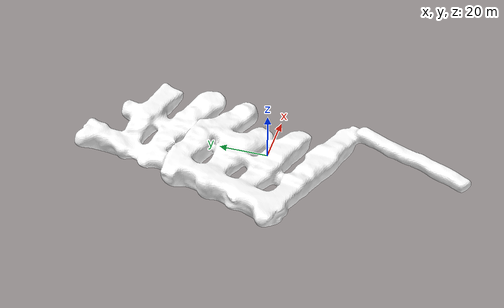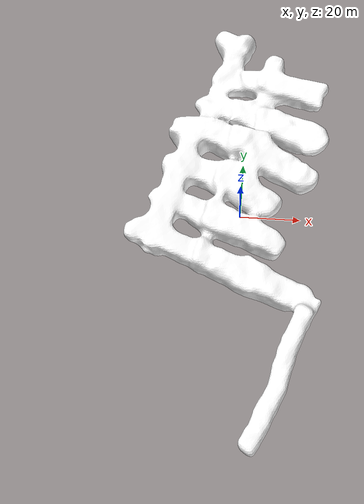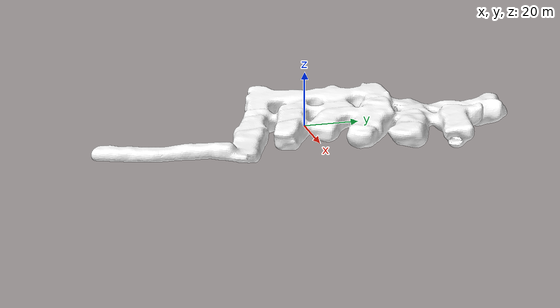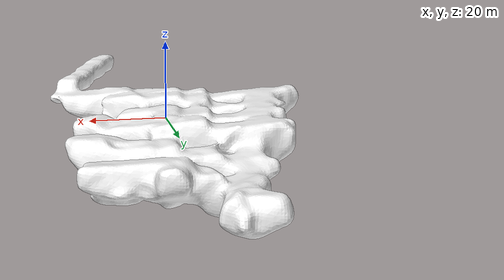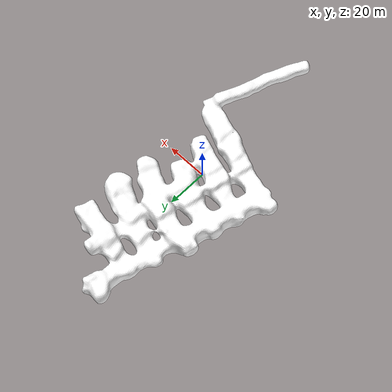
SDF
<?xml version="1.0"?>
<sdf version="1.6">
    <model name="mine_vertical">
      <pose frame=''>0 0 0  0 0 0</pose>
      <static>true</static>
      <link name="body">
        <collision name="body_collision">
          <geometry>
            <mesh>
              <uri>model://mine_vertical/meshes/mine_vertical.dae</uri>
              <scale>1 1 1</scale>
            </mesh>
          </geometry>
        </collision>
        <visual name="body_visual">
          <geometry>
            <mesh>
              <uri>model://mine_vertical/meshes/mine_vertical.dae</uri>
              <scale>1 1 1</scale>
            </mesh>
          </geometry>
          <material>
          <script>
            <uri>file://media/materials/scripts/gazebo.material</uri>
            <name>Gazebo/Motorway</name>
          </script>
          <ambient>1 1 1 1</ambient>
        </material>
        </visual>
      </link>
      <static>1</static>
    </model>
</sdf>
